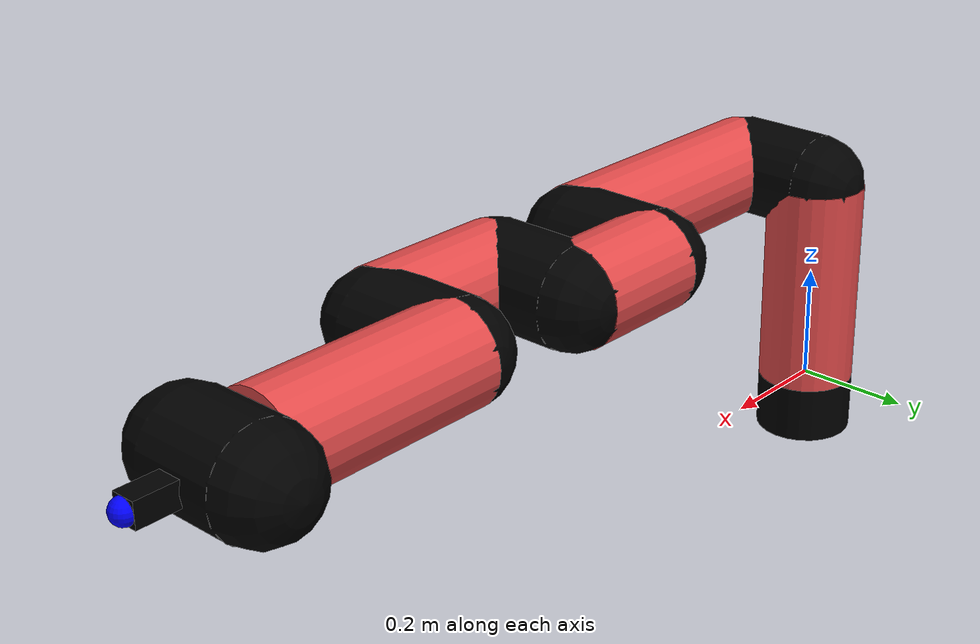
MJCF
<mujoco model="manipulator">
		<compiler angle="degree" coordinate="local" inertiafromgeom="auto" meshdir="meshes/"/>
		<option gravity="0 0 0" integrator="RK4" iterations="30" timestep="0.01"/>

		<default>
		<joint armature="1" limited="true" stiffness="10" damping="15" frictionloss="5.0"/>
		<geom conaffinity="1" condim="3" contype="1" friction=".5 .1 .1" margin="0.002"/>
		<motor ctrllimited="true"/>
		<position ctrllimited="true"/>
		</default>

		<asset>
		<texture builtin="gradient" height="100" rgb1="1.0 1.0 1.0" rgb2="1.0 1.0 1.0" type="skybox" width="100"/>
		<texture builtin="flat" height="32" name="arm_tex" rgb1="0.9 0.3 0.3" type="2d" width="32"/>
		<texture builtin="flat" height="32" name="gripper_tex" rgb1="0.0 0.0 0.0" type="cube" width="32"/>

		<material name="arm_mat" shininess="0.1" specular="0.1" texture="arm_tex"/>
		<material name="gripper_mat" shininess="1" specular="1" texture="gripper_tex"/>
		</asset>

		<worldbody>
		<light cutoff="45" diffuse=".8 .8 .8" dir="0 0.16 -1" directional="false" name="light" pos="0 -2.0 8.0" specular="0.3 0.3 0.3"/>

		<body name="base_link" pos="0 0 -0.1">
		<geom fromto="0 0 0 0 0 0.1" material="arm_mat" name="base_link" rgba="0.0 0.0 0.0 1" size="0.085" type="cylinder"/>
		</body>

		<body name="l1" pos="0 0 0">
<geom fromto="0 0 0 0 0 0.37" material="arm_mat" name="l1" rgba="0.9 0.3 0.3 1" size="0.085" type="cylinder"/>
<geom fromto="0 0 0.37 0 -0.16 0.37" material="arm_mat" name="l1_ex" rgba="0.0 0.0 0.0 1" size="0.085" type="capsule"/>
<joint axis="0 0 1" name="j1" pos="0 0 0" range="-90 90" damping="30.4" frictionloss="7.79"/>

<body name="l2" pos="0 -0.16 0.37">
<geom fromto="0 0 0 0.46 0 0" material="arm_mat" name="l2" rgba="0.9 0.3 0.3 1" size="0.085" type="cylinder"/>
<geom fromto="0.46 0 0 0.46 0.16 0" material="arm_mat" name="l2_ex" rgba="0.0 0.0 0.0 1" size="0.085" type="capsule"/>
<joint axis="0.0 1.0 0.0" name="j2" pos="0 0 0" range="-90 60" damping="31.82" frictionloss="8.57"/>

<body name="l3" pos="0.46 0.16 0">
<geom fromto="0 0 0 0.19 0 0" material="arm_mat" name="l3" rgba="0.9 0.3 0.3 1" size="0.085" type="cylinder"/>
<geom fromto="0.19 0 0 0.19 -0.16 0" material="arm_mat" name="l3_ex" rgba="0.0 0.0 0.0 1" size="0.085" type="capsule"/>
<joint axis="0.0 1.0 0.0" name="j3" pos="0 0 0" range="-30 60" damping="25.17" frictionloss="13.74"/>

<body name="l4" pos="0.19 -0.16 0">
<geom fromto="0 0 0 0.25 0 0" material="arm_mat" name="l4" rgba="0.9 0.3 0.3 1" size="0.085" type="cylinder"/>
<geom fromto="0.25 0 0 0.25 0.16 0" material="arm_mat" name="l4_ex" rgba="0.0 0.0 0.0 1" size="0.085" type="capsule"/>
<joint axis="0.0 1.0 0.0" name="j4" pos="0 0 0" range="-30 60" damping="38.6" frictionloss="8.48"/>

<body name="l5" pos="0.25 0.16 0">
<geom fromto="0 0 0 0.36 0 0" material="arm_mat" name="l5" rgba="0.9 0.3 0.3 1" size="0.085" type="cylinder"/>
<joint axis="0.0 1.0 0.0" name="j5" pos="0 0 0" range="-30 60" damping="27.99" frictionloss="8.02"/>

<body name="gripper" pos="0.36 0 0">
<geom fromto="0.05 -0.07 0 0.05 0.07 0" material="gripper_mat" name="gripper" rgba="0.0 0.0 0.0 1" size="0.085" type="capsule"/><joint axis="1 0 0" name="j6" pos="0 0 0" range="-90 90" damping="15" frictionloss="5.0"/><body name="finger" pos="0.1 0 0">
<geom fromto="0 0.0 0 0.1 0.0 0" material="gripper_mat" name="finger" rgba="0.0 0.0 0.0 1" size="0.020 0.06 0.06" type="box"/>
</body>
<site name="current" pos="0.2 0. 0.0" rgba="0. 0. 1.0 1" size="0.02" type="sphere"/>
</body>
</body>
</body>
</body>
</body>
</body>
</worldbody>
<actuator>
<motor ctrllimited="true" ctrlrange="-1.0 1.0" joint="j1" gear="89.5"/>
<motor ctrllimited="true" ctrlrange="-1.0 1.0" joint="j2" gear="88.38"/>
<motor ctrllimited="true" ctrlrange="-1.0 1.0" joint="j3" gear="104.03"/>
<motor ctrllimited="true" ctrlrange="-1.0 1.0" joint="j4" gear="108.11"/>
<motor ctrllimited="true" ctrlrange="-1.0 1.0" joint="j5" gear="48.54"/>
<motor ctrllimited="true" ctrlrange="-1.0 1.0" joint="j6" gear="80"/>
</actuator>
</mujoco>
